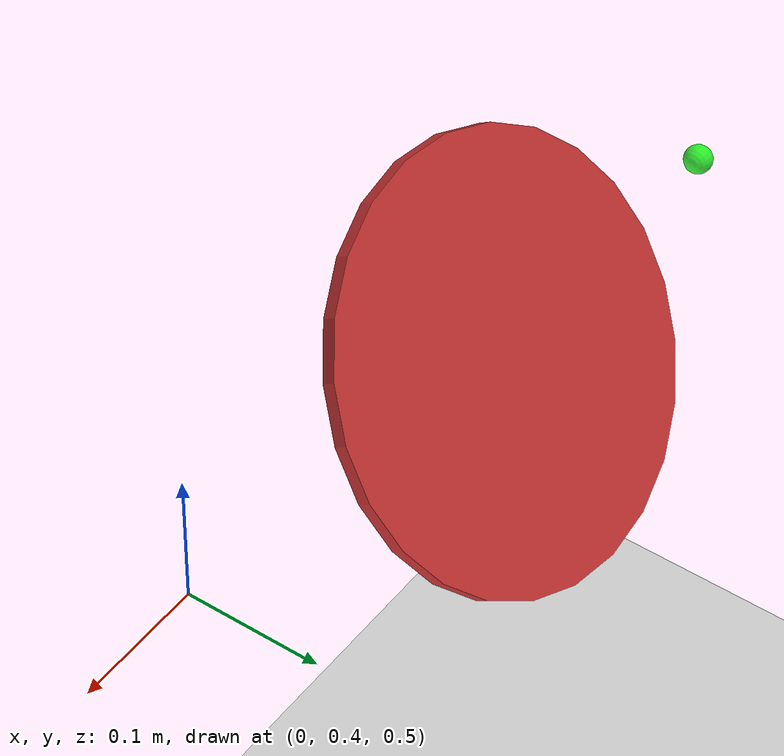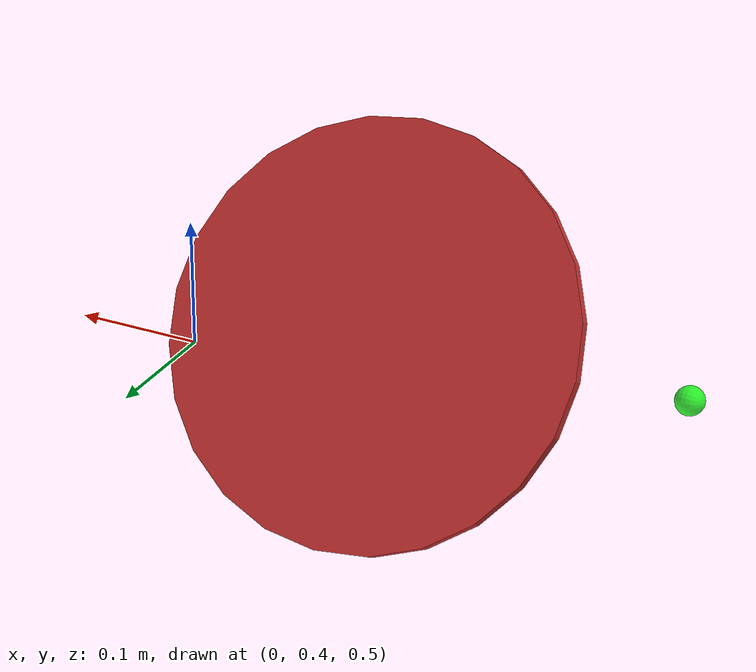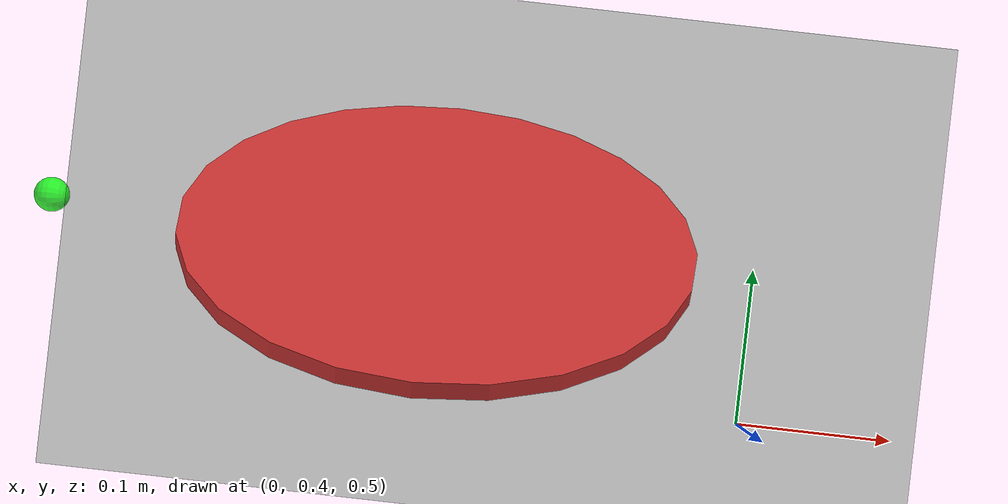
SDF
<sdf version="1.7">
 <world name="default">
  <physics type="ode">
   <ode>
    <solver>
     <type>quick</type>
     <iters>20</iters>
     <sor>1</sor>
     <use_dynamic_moi_rescaling>0</use_dynamic_moi_rescaling>
    </solver>
    <constraints>
     <cfm>0</cfm>
     <erp>0.2</erp>
     <contact_max_correcting_vel>100</contact_max_correcting_vel>
     <contact_surface_layer>0</contact_surface_layer>
    </constraints>
   </ode>
   <real_time_update_rate>1000</real_time_update_rate>
   <max_step_size>0.001</max_step_size>
   <real_time_factor>1</real_time_factor>
  </physics>
  <light name="sun" type="directional">
   <pose>0 0 10 0 -0 0</pose>
   <diffuse>0.8 0.8 0.8 1</diffuse>
   <specular>0.2 0.2 0.2 1</specular>
   <attenuation>
    <range>1000</range>
    <constant>0.9</constant>
    <linear>0.01</linear>
    <quadratic>0.001</quadratic>
   </attenuation>
   <direction>-0.5 0.1 -0.9</direction>
   <spot><inner_angle>0</inner_angle><outer_angle>0</outer_angle><falloff>0</falloff></spot>
  </light>
  <model name="ground_plane">
   <static>1</static>
   <link name="link">
    <collision name="collision">
     <geometry><plane><normal>0 0 1</normal><size>100 100</size></plane></geometry>
     <surface>
      <contact><collide_bitmask>65535</collide_bitmask></contact>
      <friction><ode><mu>100</mu><mu2>50</mu2></ode></friction>
     </surface>
    </collision>
    <visual name="visual">
     <cast_shadows>0</cast_shadows>
     <geometry><plane><normal>0 0 1</normal><size>100 100</size></plane></geometry>
     <material>
      <script><uri>file://media/materials/scripts/gazebo.material</uri><name>Gazebo/Grey</name></script>
     </material>
    </visual>
   </link>
  </model>
  <gravity>0 0 0</gravity>
  <magnetic_field>6e-06 2.3e-05 -4.2e-05</magnetic_field>
  <atmosphere type="adiabatic"/>
  <scene><ambient>0.4 0.4 0.4 1</ambient><background>0.7 0.7 0.7 1</background><shadows>1</shadows></scene>
  <spherical_coordinates>
   <surface_model>EARTH_WGS84</surface_model>
   <latitude_deg>0</latitude_deg>
   <longitude_deg>0</longitude_deg>
   <elevation>0</elevation>
   <heading_deg>0</heading_deg>
  </spherical_coordinates>
  <shadows>0</shadows>
  <plugin name="gazebo_ros_api_plugin" filename="libgazebo_ros_api_plugin.so"/>
  <plugin name="model_attachment_plugin" filename="libboeing_gazebo_model_attachment_plugin.so"/>
  <model name="plate">
   <pose>-0.2 0.5 0.6 -1.0 0 0</pose>
   <static>false</static>
   <link name="plate_link">
    <inertial>
     <mass>0.2</mass>
     <inertia><ixx>0.0003</ixx><ixy>0</ixy><ixz>0</ixz><iyy>0.0003</iyy><iyz>0</iyz><izz>0.0006</izz></inertia>
    </inertial>
    <visual name="plate_visual">
     <geometry><cylinder><radius>0.15</radius><length>0.01</length></cylinder></geometry>
     <material><ambient>0.8 0.2 0.2 1</ambient><diffuse>0.8 0.2 0.2 1</diffuse></material>
    </visual>
   </link>
   <link name="plate_grasp_link">
    <pose relative_to="plate_link">-0.225 -0.005 0.00 0 1.57079632679 0</pose>
    <inertial>
     <mass>0.01</mass>
     <inertia><ixx>1e-6</ixx><ixy>0</ixy><ixz>0</ixz><iyy>1e-6</iyy><iyz>0</iyz><izz>1e-6</izz></inertia>
    </inertial>
    <visual name="grasp_visual">
     <geometry><sphere><radius>0.01</radius></sphere></geometry>
     <material><ambient>0 1 0 0.8</ambient><diffuse>0 1 0 0.8</diffuse></material>
    </visual>
   </link>
   <joint name="plate_fixed_joint" type="fixed">
    <parent>plate_link</parent>
    <child>plate_grasp_link</child>
   </joint>
  </model>
 </world>
</sdf>
